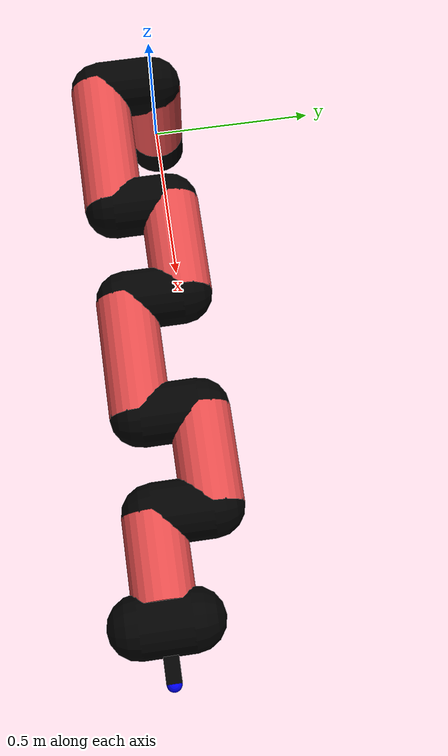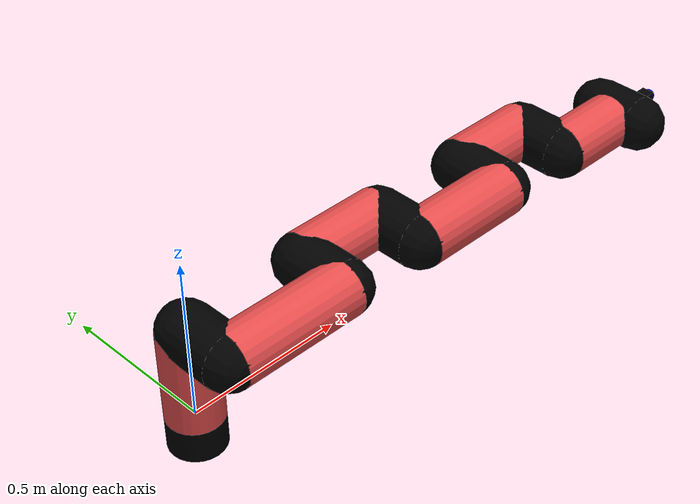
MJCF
<mujoco model="manipulator">
		<compiler angle="degree" coordinate="local" inertiafromgeom="auto" meshdir="meshes/"/>
		<option gravity="0 0 0" integrator="RK4" iterations="30" timestep="0.01"/>

		<default>
		<joint armature="1" limited="true" stiffness="10" damping="15" frictionloss="5.0"/>
		<geom conaffinity="1" condim="3" contype="1" friction=".5 .1 .1" margin="0.002"/>
		<motor ctrllimited="true"/>
		<position ctrllimited="true"/>
		</default>

		<asset>
		<texture builtin="gradient" height="100" rgb1="1.0 1.0 1.0" rgb2="1.0 1.0 1.0" type="skybox" width="100"/>
		<texture builtin="flat" height="32" name="arm_tex" rgb1="0.9 0.3 0.3" type="2d" width="32"/>
		<texture builtin="flat" height="32" name="gripper_tex" rgb1="0.0 0.0 0.0" type="cube" width="32"/>

		<material name="arm_mat" shininess="0.1" specular="0.1" texture="arm_tex"/>
		<material name="gripper_mat" shininess="1" specular="1" texture="gripper_tex"/>
		</asset>

		<worldbody>
		<light cutoff="45" diffuse=".8 .8 .8" dir="0 0.16 -1" directional="false" name="light" pos="0 -2.0 8.0" specular="0.3 0.3 0.3"/>

		<body name="base_link" pos="0 0 -0.1">
		<geom fromto="0 0 0 0 0 0.1" material="arm_mat" name="base_link" rgba="0.0 0.0 0.0 1" size="0.085" type="cylinder"/>
		</body>

		<body name="l1" pos="0 0 0">
<geom fromto="0 0 0 0 0 0.29" material="arm_mat" name="l1" rgba="0.9 0.3 0.3 1" size="0.085" type="cylinder"/>
<geom fromto="0 0 0.29 0 -0.16 0.29" material="arm_mat" name="l1_ex" rgba="0.0 0.0 0.0 1" size="0.085" type="capsule"/>
<joint axis="0 0 1" name="j1" pos="0 0 0" range="-90 90" damping="29.51" frictionloss="9.65"/>

<body name="l2" pos="0 -0.16 0.29">
<geom fromto="0 0 0 0.4 0 0" material="arm_mat" name="l2" rgba="0.9 0.3 0.3 1" size="0.085" type="cylinder"/>
<geom fromto="0.4 0 0 0.4 0.16 0" material="arm_mat" name="l2_ex" rgba="0.0 0.0 0.0 1" size="0.085" type="capsule"/>
<joint axis="0.0 1.0 0.0" name="j2" pos="0 0 0" range="-90 60" damping="26.77" frictionloss="8.65"/>

<body name="l3" pos="0.4 0.16 0">
<geom fromto="0 0 0 0.29 0 0" material="arm_mat" name="l3" rgba="0.9 0.3 0.3 1" size="0.085" type="cylinder"/>
<geom fromto="0.29 0 0 0.29 -0.16 0" material="arm_mat" name="l3_ex" rgba="0.0 0.0 0.0 1" size="0.085" type="capsule"/>
<joint axis="0.0 1.0 0.0" name="j3" pos="0 0 0" range="-30 60" damping="32.47" frictionloss="12.03"/>

<body name="l4" pos="0.29 -0.16 0">
<geom fromto="0 0 0 0.34 0 0" material="arm_mat" name="l4" rgba="0.9 0.3 0.3 1" size="0.085" type="cylinder"/>
<geom fromto="0.34 0 0 0.34 0.16 0" material="arm_mat" name="l4_ex" rgba="0.0 0.0 0.0 1" size="0.085" type="capsule"/>
<joint axis="0.0 1.0 0.0" name="j4" pos="0 0 0" range="-30 60" damping="27.1" frictionloss="10.66"/>

<body name="l5" pos="0.34 0.16 0">
<geom fromto="0 0 0 0.27 0 0" material="arm_mat" name="l5" rgba="0.9 0.3 0.3 1" size="0.085" type="cylinder"/>
<geom fromto="0.27 0 0 0.27 -0.16 0" material="arm_mat" name="l5_ex" rgba="0.0 0.0 0.0 1" size="0.085" type="capsule"/>
<joint axis="0.0 1.0 0.0" name="j5" pos="0 0 0" range="-30 60" damping="27.17" frictionloss="10.44"/>

<body name="l6" pos="0.27 -0.16 0">
<geom fromto="0 0 0 0.23 0 0" material="arm_mat" name="l6" rgba="0.9 0.3 0.3 1" size="0.085" type="cylinder"/>
<joint axis="0.0 1.0 0.0" name="j6" pos="0 0 0" range="-30 60" damping="25.45" frictionloss="9.82"/>

<body name="gripper" pos="0.23 0 0">
<geom fromto="0.05 -0.07 0 0.05 0.07 0" material="gripper_mat" name="gripper" rgba="0.0 0.0 0.0 1" size="0.085" type="capsule"/><joint axis="1 0 0" name="j7" pos="0 0 0" range="-90 90" damping="15" frictionloss="5.0"/><body name="finger" pos="0.1 0 0">
<geom fromto="0 0.0 0 0.1 0.0 0" material="gripper_mat" name="finger" rgba="0.0 0.0 0.0 1" size="0.020 0.06 0.06" type="box"/>
</body>
<site name="current" pos="0.2 0. 0.0" rgba="0. 0. 1.0 1" size="0.02" type="sphere"/>
</body>
</body>
</body>
</body>
</body>
</body>
</body>
</worldbody>
<actuator>
<motor ctrllimited="true" ctrlrange="-1.0 1.0" joint="j1" gear="76.23"/>
<motor ctrllimited="true" ctrlrange="-1.0 1.0" joint="j2" gear="64.22"/>
<motor ctrllimited="true" ctrlrange="-1.0 1.0" joint="j3" gear="90.18"/>
<motor ctrllimited="true" ctrlrange="-1.0 1.0" joint="j4" gear="65.55"/>
<motor ctrllimited="true" ctrlrange="-1.0 1.0" joint="j5" gear="99.43"/>
<motor ctrllimited="true" ctrlrange="-1.0 1.0" joint="j6" gear="88.94"/>
<motor ctrllimited="true" ctrlrange="-1.0 1.0" joint="j7" gear="80"/>
</actuator>
</mujoco>
